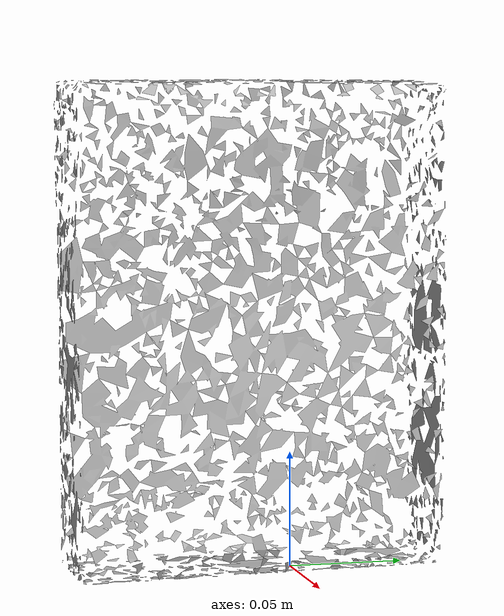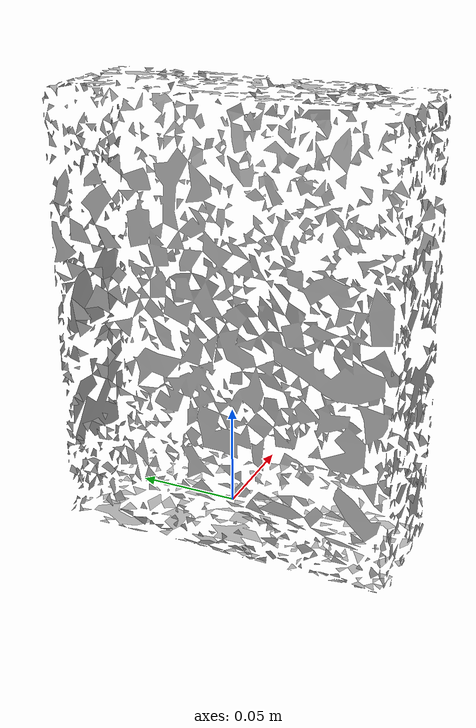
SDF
<?xml version='1.0'?>
  <sdf version="1.6">
    <model name="cracker_box">
      <pose frame=''>0 0 0 0 0 0</pose>
      <static>false</static>

      <link name="cracker_link">
        <pose>0 0 0 0 0 0</pose>
          <inertial>
            <pose frame=''>-0.01485355781018036 -0.01020505447388014 0.05220486833098277 3.133592366386321 0.010946297886107008 3.140976285001705</pose>
            <mass>0.0021732875685518717</mass>
            <inertia>
              <ixx>1.2667764335249046e-05</ixx>
              <ixy>-1.7985519821155229e-23</ixy>
              <ixz>3.669342532837818e-23</ixz>
              <iyy>8.895223860935137e-06</iyy>
              <iyz>-5.74592761502014e-22</iyz>
              <izz>5.284067250610003e-06</izz>
            </inertia>
          </inertial>

          <gravity>1</gravity>
          <velocity_decay/>
          <self_collide>1</self_collide>
          <enable_wind>0</enable_wind>
          <kinematic>0</kinematic>

          <collision name="cracker_collision">
            <geometry>
              <mesh>
                <!-- Use a downsampled mesh for collisions -->
                <uri>model://003_cracker_box/downsampled.obj</uri>
              </mesh>
            </geometry>
            <surface>
            </surface>
          </collision>

          <visual name="cracker_visual">
            <pose frame=''>0 0 0 0 0 0</pose>
            <geometry>
              <mesh>
                <uri>model://003_cracker_box/google_16k/textured.obj</uri>
              </mesh>
            </geometry>
            <material>
              <script>
                <uri>model://003_cracker_box/cracker_box.material</uri>
                <name>cracker_box</name>
              </script>
            </material>
          </visual>
      </link>
    </model>
  </sdf>
